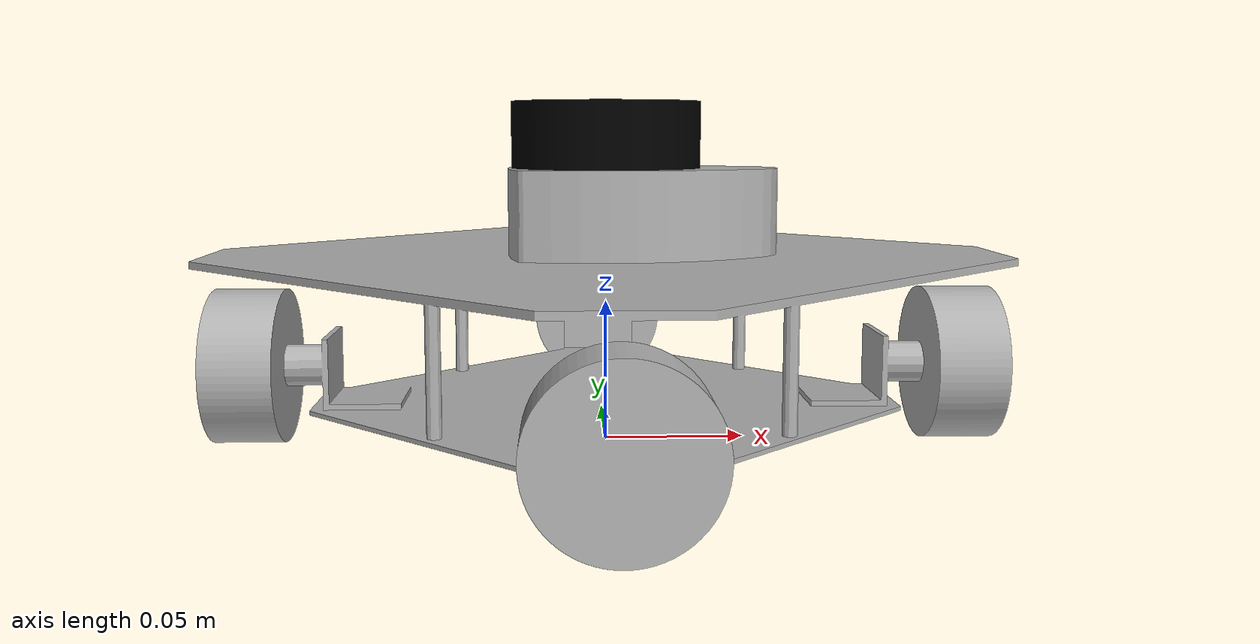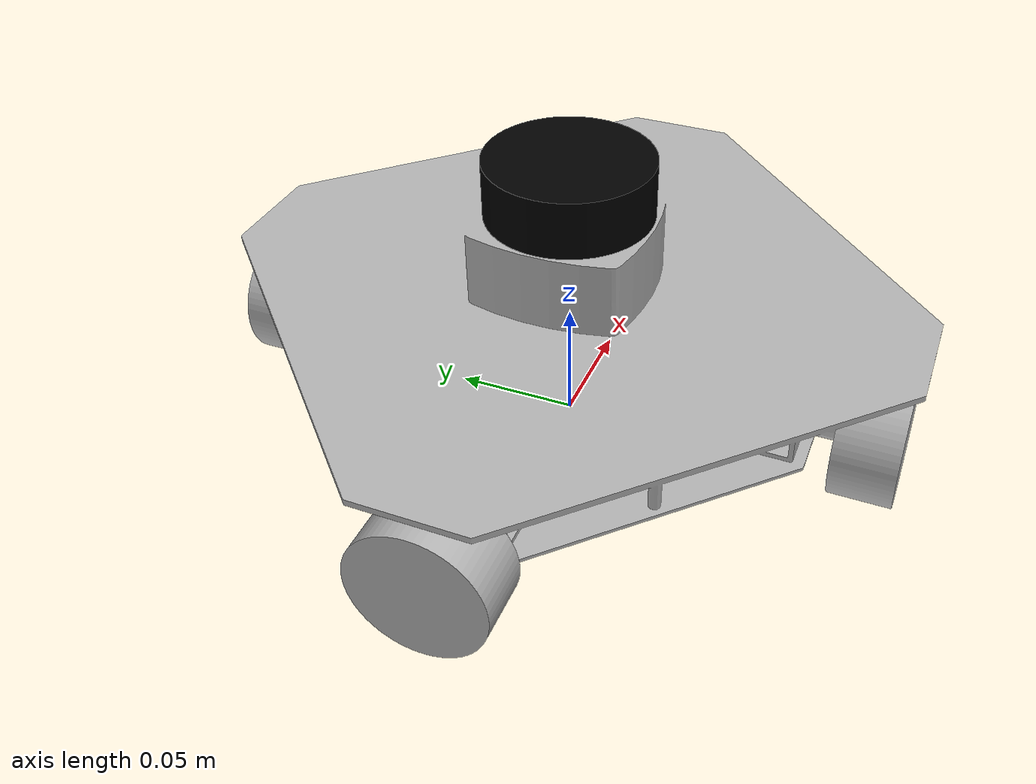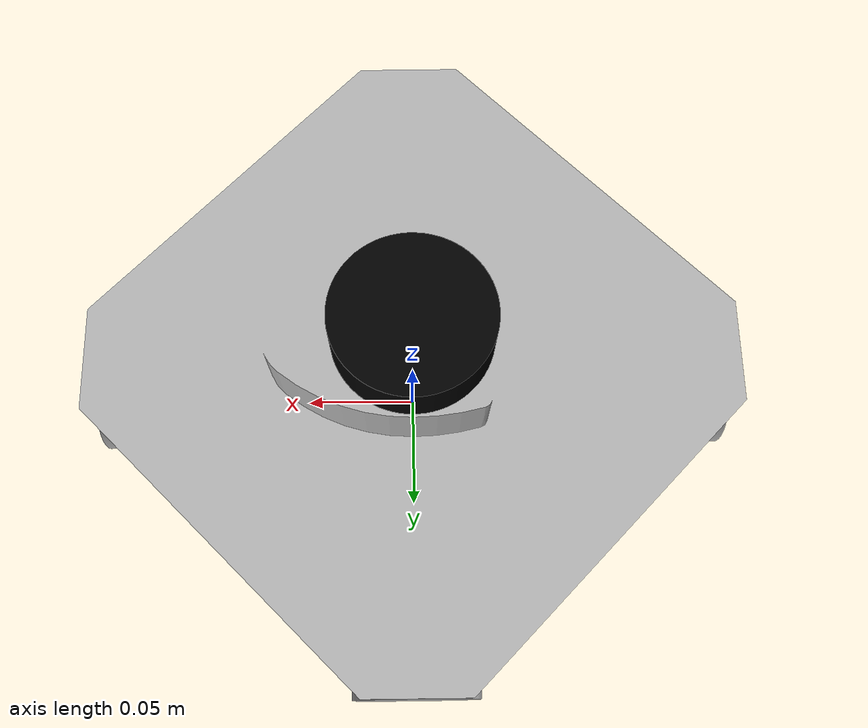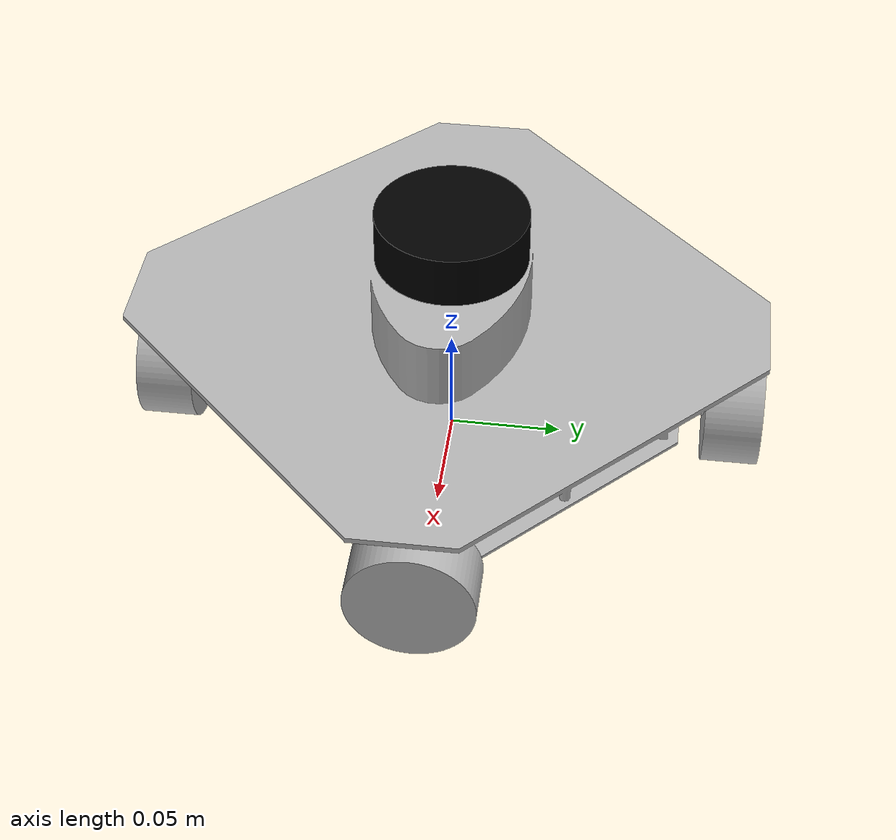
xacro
<?xml version="1.0"?>
<!-- Basic differential drive mobile base -->
<robot xmlns:xacro="http://www.ros.org/wiki/xacro" name="custom_hardware">
  <xacro:arg name="prefix" default="" />

  <!-- Import urdf description -->
  <xacro:include filename="$(find omni_drive_arduino)/urdf/omnibot_description.urdf.xacro" />

  <!-- Import Rviz colors -->
  <xacro:include filename="$(find omni_drive_arduino)/urdf/omnibot.materials.xacro" />

  <!-- Import omnibot ros2_control description -->
  <xacro:include filename="$(find omni_drive_arduino)/ros2_control/omnibot.ros2_control.xacro" />

  <xacro:omnibot prefix="$(arg prefix)" />

  <xacro:omnibot_ros2_control
    name="omnibot" prefix="$(arg prefix)" />

</robot>

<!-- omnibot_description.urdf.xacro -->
<robot xmlns:xacro="http://www.ros.org/wiki/xacro">

  <xacro:macro name="omnibot" params="prefix">

  <link name="base_footprint">
    <visual>
      <origin xyz="0 0 0" rpy="0 0 0"/>
      <geometry>
        <mesh filename="file://$(find omni_drive_arduino)/meshes/base_footprint.stl" scale="0.001 0.001 0.001"/>
      </geometry>
      <material name="silver"/>
    </visual>
    <collision>
      <origin xyz="0 0 0" rpy="0 0 0"/>
      <geometry>
        <mesh filename="file://$(find omni_drive_arduino)/meshes/base_footprint.stl" scale="0.001 0.001 0.001"/>
      </geometry>
    </collision>
  </link>

  <link name="base_link">
    <visual>
      <origin xyz="0.0 -0.0 -0.098" rpy="0 0 0"/>
      <geometry>
        <mesh filename="file://$(find omni_drive_arduino)/meshes/base_link.stl" scale="0.001 0.001 0.001"/>
      </geometry>
      <material name="black"/>
    </visual>
    <collision>
      <origin xyz="0.0 -0.0 -0.098" rpy="0 0 0"/>
      <geometry>
        <mesh filename="file://$(find omni_drive_arduino)/meshes/base_link.stl" scale="0.001 0.001 0.001"/>
      </geometry>
    </collision>
  </link>

  <link name="wheel_4_1">
    <inertial>
      <origin xyz="0.012500286602236538 -3.4638958368304883e-15 -9.020562075079397e-16" rpy="0 0 0"/>
      <mass value="0.4662565284394167"/>
      <inertia ixx="0.000176" iyy="0.000112" izz="0.000112" ixy="-0.0" iyz="0.0" ixz="-0.0"/>
    </inertial>
    <visual>
      <origin xyz="-0.114405 -0.0 -0.0275" rpy="0 0 0"/>
      <geometry>
        <mesh filename="file://$(find omni_drive_arduino)/meshes/wheel_4_1.stl" scale="0.001 0.001 0.001"/>
      </geometry>
      <material name="silver"/>
    </visual>
    <collision>
      <origin xyz="-0.114405 -0.0 -0.0275" rpy="0 0 0"/>
      <geometry>
        <mesh filename="file://$(find omni_drive_arduino)/meshes/wheel_4_1.stl" scale="0.001 0.001 0.001"/>
      </geometry>
    </collision>
  </link>

  <link name="wheel_3_1">
    <inertial>
      <origin xyz="-2.3335371163391016e-07 0.012499547092654287 4.3680337125096e-15" rpy="0 0 0"/>
      <mass value="0.46625652843941706"/>
      <inertia ixx="0.000112" iyy="0.000176" izz="0.000112" ixy="-0.0" iyz="-0.0" ixz="-0.0"/>
    </inertial>
    <visual>
      <origin xyz="0.0 -0.114406 -0.0275" rpy="0 0 0"/>
      <geometry>
        <mesh filename="file://$(find omni_drive_arduino)/meshes/wheel_3_1.stl" scale="0.001 0.001 0.001"/>
      </geometry>
      <material name="silver"/>
    </visual>
    <collision>
      <origin xyz="0.0 -0.114406 -0.0275" rpy="0 0 0"/>
      <geometry>
        <mesh filename="file://$(find omni_drive_arduino)/meshes/wheel_3_1.stl" scale="0.001 0.001 0.001"/>
      </geometry>
    </collision>
  </link>

  <link name="wheel_2_1">
    <inertial>
      <origin xyz="-0.01249956825173544 3.728177829565027e-08 4.413136522884997e-15" rpy="0 0 0"/>
      <mass value="0.4662565284394172"/>
      <inertia ixx="0.000176" iyy="0.000112" izz="0.000112" ixy="-0.0" iyz="0.0" ixz="-0.0"/>
    </inertial>
    <visual>
      <origin xyz="0.114406 -0.0 -0.0275" rpy="0 0 0"/>
      <geometry>
        <mesh filename="file://$(find omni_drive_arduino)/meshes/wheel_2_1.stl" scale="0.001 0.001 0.001"/>
      </geometry>
      <material name="silver"/>
    </visual>
    <collision>
      <origin xyz="0.114406 -0.0 -0.0275" rpy="0 0 0"/>
      <geometry>
        <mesh filename="file://$(find omni_drive_arduino)/meshes/wheel_2_1.stl" scale="0.001 0.001 0.001"/>
      </geometry>
    </collision>
  </link>

  <link name="wheel_1_1">
    <inertial>
      <origin xyz="-3.723932087140724e-08 -0.012500343941844794 4.760081218080359e-15" rpy="0 0 0"/>
      <mass value="0.466256528439417"/>
      <inertia ixx="0.000112" iyy="0.000176" izz="0.000112" ixy="-0.0" iyz="0.0" ixz="-0.0"/>
    </inertial>
    <visual>
      <origin xyz="0.0 0.114405 -0.0275" rpy="0 0 0"/>
      <geometry>
        <mesh filename="file://$(find omni_drive_arduino)/meshes/wheel_1_1.stl" scale="0.001 0.001 0.001"/>
      </geometry>
      <material name="silver"/>
    </visual>
    <collision>
      <origin xyz="0.0 0.114405 -0.0275" rpy="0 0 0"/>
      <geometry>
        <mesh filename="file://$(find omni_drive_arduino)/meshes/wheel_1_1.stl" scale="0.001 0.001 0.001"/>
      </geometry>
    </collision>
  </link>

  <joint name="joint_5" type="fixed">
    <origin xyz="0.0 0.0 0.098" rpy="0 0 0"/>
    <parent link="base_footprint"/>
    <child link="base_link"/>
  </joint>

  <joint name="joint_4" type="continuous">
    <origin xyz="0.114405 0.0 0.0275" rpy="0 0 0"/>
    <parent link="base_footprint"/>
    <child link="wheel_4_1"/>
    <axis xyz="-1.0 0.0 -0.0"/>
  </joint>

  <joint name="joint_3" type="continuous">
    <origin xyz="0.0 0.114406 0.0275" rpy="0 0 0"/>
    <parent link="base_footprint"/>
    <child link="wheel_3_1"/>
    <axis xyz="-1e-06 1.0 0.0"/>
  </joint>

  <joint name="joint_2" type="continuous">
    <origin xyz="-0.114406 0.0 0.0275" rpy="0 0 0"/>
    <parent link="base_footprint"/>
    <child link="wheel_2_1"/>
    <axis xyz="1.0 -0.0 -0.0"/>
  </joint>

  <joint name="joint_1" type="continuous">
    <origin xyz="0.0 -0.114405 0.0275" rpy="0 0 0"/>
    <parent link="base_footprint"/>
    <child link="wheel_1_1"/>
    <axis xyz="-0.0 1.0 -0.0"/>
  </joint>

  </xacro:macro>

</robot>

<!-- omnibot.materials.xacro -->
<robot xmlns:xacro="http://www.ros.org/wiki/xacro">
  <material name="silver">
    <color rgba="0.700 0.700 0.700 1.000"/>
  </material>
  <material name="black">
    <color rgba="0.000 0.000 0.000 1.000"/>
  </material>
</robot>
